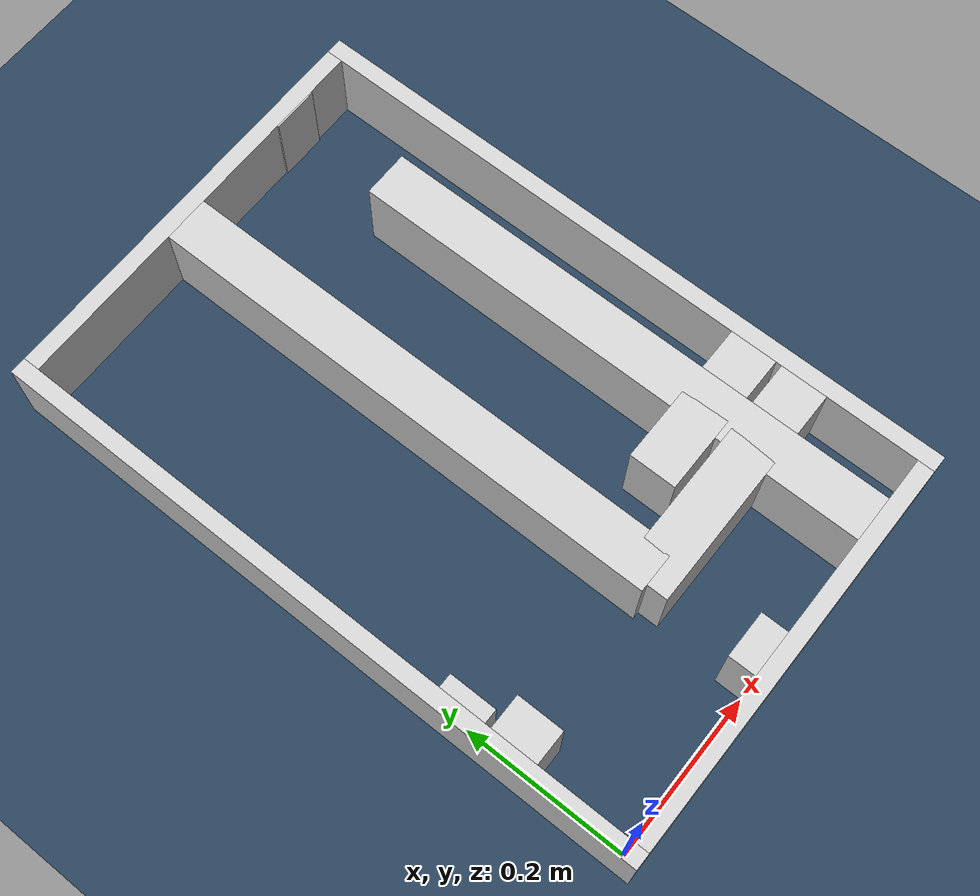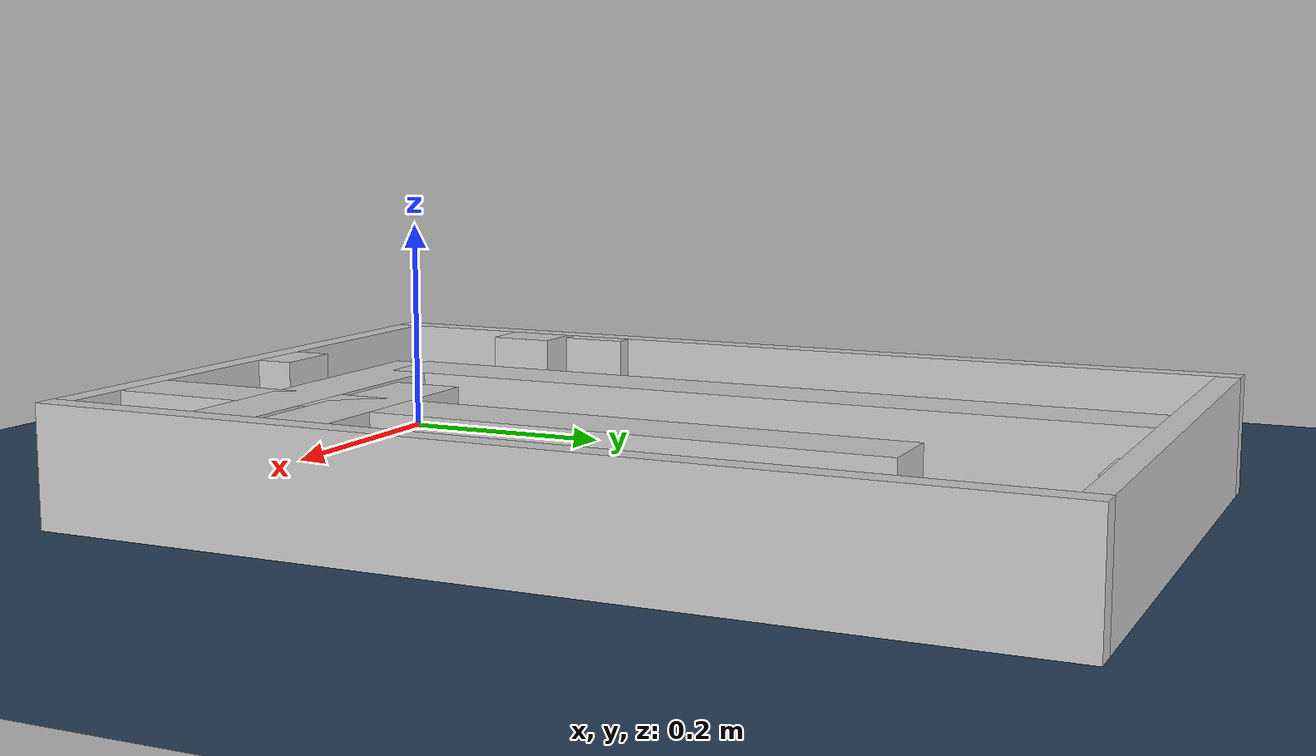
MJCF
<?xml version="1.0" ?>
<mujoco model="generated_real_template">
  <compiler angle="degree"/>
  <option timestep="0.002" integrator="implicitfast" iterations="100" cone="elliptic"/>
  <default>
    <geom density="1"/>
  </default>
  <asset>
    <texture builtin="gradient" height="3072" rgb1="0.3 0.5 0.7" rgb2="0 0 0" type="skybox" width="512"/>
    <texture builtin="checker" height="300" mark="edge" markrgb="0.8 0.8 0.8" name="groundplane" rgb1="0.2 0.3 0.4" rgb2="0.1 0.2 0.3" type="2d" width="300"/>
    <material name="groundplane" reflectance="0.2" texrepeat="5 5" texture="groundplane" texuniform="true"/>
  </asset>
  <worldbody>
    <light dir="0 0 -1" directional="true" pos="0 0 1.5"/>
    <geom name="floor" type="plane" condim="4" friction="0.5 0.005 0.001" material="groundplane" size="0 0 0.05"/>
    <body name="walls">
      <geom name="wall_boundary_left" type="box" condim="4" friction="1.0 0.005 0.0001" rgba="0.8 0.8 0.8 1" pos="-0.010000 0.387500 0.050000" euler="0 0 0.000000" size="0.010000 0.407500 0.050000"/>
      <geom name="wall_boundary_right" type="box" condim="4" friction="1.0 0.005 0.0001" rgba="0.8 0.8 0.8 1" pos="0.500000 0.387500 0.050000" euler="0 0 0.000000" size="0.010000 0.407500 0.050000"/>
      <geom name="wall_boundary_bottom" type="box" condim="4" friction="1.0 0.005 0.0001" rgba="0.8 0.8 0.8 1" pos="0.245000 -0.010000 0.050000" euler="0 0 0.000000" size="0.245000 0.010000 0.050000"/>
      <geom name="wall_boundary_top" type="box" condim="4" friction="1.0 0.005 0.0001" rgba="0.8 0.8 0.8 1" pos="0.245000 0.785000 0.050000" euler="0 0 0.000000" size="0.245000 0.010000 0.050000"/>
      <geom name="wall_inner_1_1" type="box" condim="4" friction="1.0 0.005 0.0001" rgba="0.8 0.8 0.8 1" pos="0.229423 0.016304 0.050000" euler="0 0 90.000000" size="0.016304 0.028500 0.050000"/>
      <geom name="wall_inner_1_2" type="box" condim="4" friction="1.0 0.005 0.0001" rgba="0.8 0.8 0.8 1" pos="0.229423 0.456369 0.050000" euler="0 0 90.000000" size="0.318631 0.028500 0.050000"/>
      <geom name="wall_inner_2_1" type="box" condim="4" friction="1.0 0.005 0.0001" rgba="0.8 0.8 0.8 1" pos="0.020930 0.141253 0.050000" euler="0 0 0.000000" size="0.020930 0.028500 0.050000"/>
      <geom name="wall_inner_2_2" type="box" condim="4" friction="1.0 0.005 0.0001" rgba="0.8 0.8 0.8 1" pos="0.349678 0.141253 0.050000" euler="0 0 0.000000" size="0.140322 0.028500 0.050000"/>
      <geom name="wall_inner_3_1" type="box" condim="4" friction="1.0 0.005 0.0001" rgba="0.8 0.8 0.8 1" pos="0.408402 0.321125 0.050000" euler="0 0 90.000000" size="0.321125 0.028500 0.050000"/>
      <geom name="wall_inner_3_2" type="box" condim="4" friction="1.0 0.005 0.0001" rgba="0.8 0.8 0.8 1" pos="0.408402 0.774042 0.050000" euler="0 0 90.000000" size="0.000958 0.028500 0.050000"/>
      <geom name="wall_inner_4_1" type="box" condim="4" friction="1.0 0.005 0.0001" rgba="0.8 0.8 0.8 1" pos="0.008695 0.205328 0.050000" euler="0 0 0.000000" size="0.008695 0.028500 0.050000"/>
      <geom name="wall_inner_4_2" type="box" condim="4" friction="1.0 0.005 0.0001" rgba="0.8 0.8 0.8 1" pos="0.400071 0.205328 0.050000" euler="0 0 0.000000" size="0.089929 0.028500 0.050000"/>
    </body>
  </worldbody>
</mujoco>
